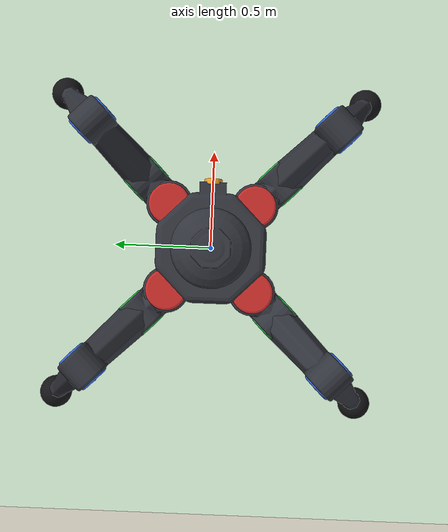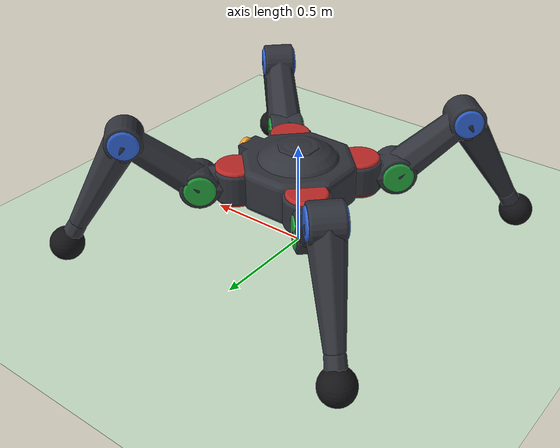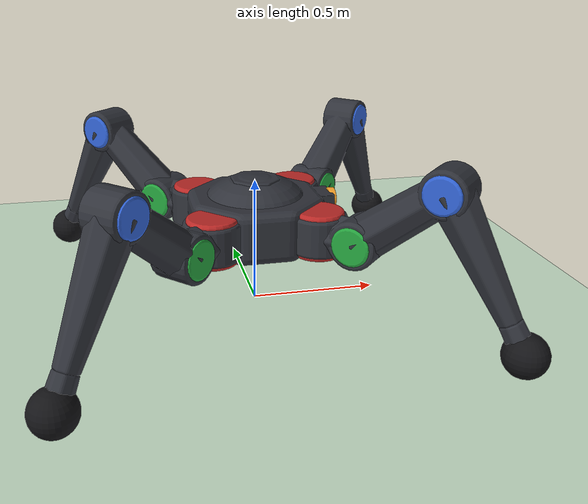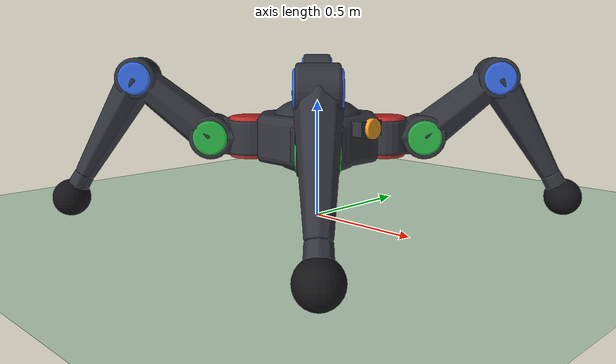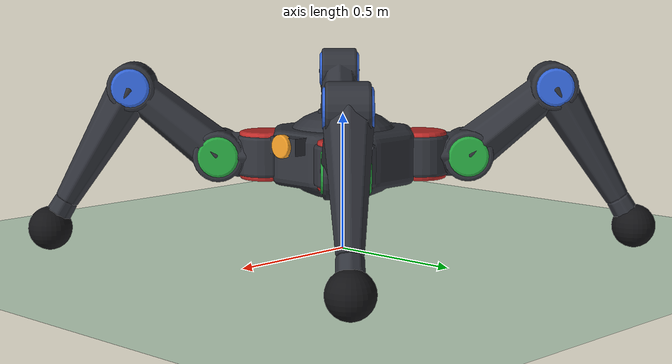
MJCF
<mujoco model="spyder12">
  <compiler angle="degree" coordinate="local" inertiafromgeom="true"/>
  <option integrator="RK4" timestep="0.01"/>

  <default>
    <joint armature="1" damping="1" stiffness="30" limited="true"/>
    <geom condim="3" density="5.0" friction="1 0.5 0.5" margin="0.01" rgba="0.55 0.55 0.58 1" group="3"/>
    <motor ctrllimited="true" ctrlrange="-1 1" gear="40"/>
    <default class="visual">
      <geom type="mesh" contype="0" conaffinity="0" density="0" group="2" rgba="0.5 0.5 0.5 1"/>
    </default>
  </default>

  <!-- Floor texture + skybox (same recipe as Gymnasium's ant.xml). Without a
       ground plane the spider free-falls forever — a robot model alone is not
       a world. -->
  <asset>
    <texture builtin="gradient" height="100" rgb1="1 1 1" rgb2="0 0 0" type="skybox" width="100"/>
    <texture builtin="checker" height="100" name="texplane" rgb1="0.28 0.30 0.32" rgb2="0.38 0.40 0.42" type="2d" width="100"/>
    <material name="MatPlane" reflectance="0.3" shininess="1" specular="1" texrepeat="60 60" texture="texplane"/>

    <mesh name="carapace_shell" file="meshes/carapace_shell.obj"/>
    <mesh name="carapace_lens"  file="meshes/carapace_lens.obj"/>
    <mesh name="coxa_shell"     file="meshes/coxa_shell.obj"/>
    <mesh name="coxa_hub"       file="meshes/coxa_hub.obj"/>
    <mesh name="femur_shell"    file="meshes/femur_shell.obj"/>
    <mesh name="femur_hub"      file="meshes/femur_hub.obj"/>
    <mesh name="tibia_shell"    file="meshes/tibia_shell.obj"/>
    <mesh name="tibia_hub"      file="meshes/tibia_hub.obj"/>
    <mesh name="tibia_pad"      file="meshes/tibia_pad.obj"/>

    <!-- MuJoCo's OBJ loader ignores .mtl, so colour lives here and each colour
         needs its own mesh — that is why every part splits shell/hub. -->
    <material name="MatShell" rgba="0.19 0.20 0.23 1" specular="0.6" shininess="0.55" reflectance="0.12"/>
    <material name="MatHip"   rgba="0.76 0.17 0.16 1" specular="0.5" shininess="0.40"/>
    <material name="MatLift"  rgba="0.15 0.65 0.25 1" specular="0.5" shininess="0.40"/>
    <material name="MatKnee"  rgba="0.20 0.40 0.85 1" specular="0.5" shininess="0.40"/>
    <material name="MatPad"   rgba="0.08 0.08 0.09 1" specular="0.1" shininess="0.10"/>
    <material name="MatLens"  rgba="0.95 0.62 0.15 1" specular="0.9" shininess="0.90" emission="0.35"/>
  </asset>

  <worldbody>
    <light cutoff="100" diffuse="1 1 1" dir="0 0 -1.3" directional="true" exponent="1" pos="0 0 1.3" specular=".1 .1 .1"/>
    <geom conaffinity="1" condim="3" group="0" material="MatPlane" name="floor" pos="0 0 0" rgba="0.8 0.9 0.8 1" size="40 40 40" type="plane"/>

    <body name="torso" pos="0 0 0.35">
      <camera name="track" mode="trackcom" pos="0 -3 0.3" xyaxes="1 0 0 0 0 1"/>
      <joint armature="0" damping="0" stiffness="0" limited="false" margin="0.01" name="root" pos="0 0 0" type="free"/>
      <geom class="visual" mesh="carapace_shell" material="MatShell"/>
      <geom class="visual" mesh="carapace_lens"  material="MatLens"/>

      <geom name="torso_geom" pos="0 0 0" size="0.25" type="sphere" rgba="0.28 0.28 0.32 1"/>
      <!-- Coxa stubs: welded to the torso (they carry no joint), one per leg. -->
      <geom name="stub_1" fromto="0 0 0  0.2  0.2 0" size="0.08" type="capsule"/>
      <geom name="stub_2" fromto="0 0 0 -0.2  0.2 0" size="0.08" type="capsule"/>
      <geom name="stub_3" fromto="0 0 0 -0.2 -0.2 0" size="0.08" type="capsule"/>
      <geom name="stub_4" fromto="0 0 0  0.2 -0.2 0" size="0.08" type="capsule"/>

      <!-- ═ Leg 1 · front-left (+x,+y) ═ -->
      <body name="coxa_1" pos="0.2 0.2 0">
        <joint name="hip_1" type="hinge" axis="0 0 1" pos="0 0 0" range="-40 40"/>
        <!-- Leg 1 runs along +45°, so each shell mesh — authored along +x — is
             instanced with quat = rot_z(45°) = (cos 22.5°, 0, 0, sin 22.5°). -->
        <geom class="visual" mesh="coxa_shell" material="MatShell" quat="0.92387953 0 0 0.38268343"/>
        <geom class="visual" mesh="coxa_hub"   material="MatHip"   quat="0.92387953 0 0 0.38268343"/>
        <geom name="coxa_1_geom" fromto="0 0 0 0.12 0.12 0" size="0.08" type="capsule"/>
        <body name="femur_1" pos="0.12 0.12 0">
          <joint name="lift_1" type="hinge" axis="-1 1 0" pos="0 0 0" range="-60 60"/>
          <geom class="visual" mesh="femur_shell" material="MatShell" quat="0.92387953 0 0 0.38268343"/>
          <geom class="visual" mesh="femur_hub"   material="MatLift"  quat="0.92387953 0 0 0.38268343"/>
          <geom name="femur_1_geom" fromto="0 0 0 0.22 0.22 0.25" size="0.08" type="capsule"/>
          <body name="tibia_1" pos="0.22 0.22 0.25">
            <joint name="knee_1" type="hinge" axis="-1 1 0" pos="0 0 0" range="-50 50"/>
            <geom class="visual" mesh="tibia_shell" material="MatShell" quat="0.92387953 0 0 0.38268343"/>
            <geom class="visual" mesh="tibia_hub"   material="MatKnee"  quat="0.92387953 0 0 0.38268343"/>
            <geom class="visual" mesh="tibia_pad"   material="MatPad"   quat="0.92387953 0 0 0.38268343"/>
            <geom name="tibia_1_geom" fromto="0 0 0 0.22 0.22 -0.52" size="0.08" type="capsule"/>
          </body>
        </body>
      </body>

      <!-- ═ Leg 2 · front-right (-x,+y) ═ -->
      <body name="coxa_2" pos="-0.2 0.2 0">
        <joint name="hip_2" type="hinge" axis="0 0 1" pos="0 0 0" range="-40 40"/>
        <!-- Leg 2: +135° -->
        <geom class="visual" mesh="coxa_shell" material="MatShell" quat="0.38268343 0 0 0.92387953"/>
        <geom class="visual" mesh="coxa_hub"   material="MatHip"   quat="0.38268343 0 0 0.92387953"/>
        <geom name="coxa_2_geom" fromto="0 0 0 -0.12 0.12 0" size="0.08" type="capsule"/>
        <body name="femur_2" pos="-0.12 0.12 0">
          <joint name="lift_2" type="hinge" axis="1 1 0" pos="0 0 0" range="-60 60"/>
          <geom class="visual" mesh="femur_shell" material="MatShell" quat="0.38268343 0 0 0.92387953"/>
          <geom class="visual" mesh="femur_hub"   material="MatLift"  quat="0.38268343 0 0 0.92387953"/>
          <geom name="femur_2_geom" fromto="0 0 0 -0.22 0.22 0.25" size="0.08" type="capsule"/>
          <body name="tibia_2" pos="-0.22 0.22 0.25">
            <joint name="knee_2" type="hinge" axis="1 1 0" pos="0 0 0" range="-50 50"/>
            <geom class="visual" mesh="tibia_shell" material="MatShell" quat="0.38268343 0 0 0.92387953"/>
            <geom class="visual" mesh="tibia_hub"   material="MatKnee"  quat="0.38268343 0 0 0.92387953"/>
            <geom class="visual" mesh="tibia_pad"   material="MatPad"   quat="0.38268343 0 0 0.92387953"/>
            <geom name="tibia_2_geom" fromto="0 0 0 -0.22 0.22 -0.52" size="0.08" type="capsule"/>
          </body>
        </body>
      </body>

      <!-- ═ Leg 3 · back-left (-x,-y) ═ -->
      <body name="coxa_3" pos="-0.2 -0.2 0">
        <joint name="hip_3" type="hinge" axis="0 0 1" pos="0 0 0" range="-40 40"/>
        <!-- Leg 3: -135° -->
        <geom class="visual" mesh="coxa_shell" material="MatShell" quat="0.38268343 0 0 -0.92387953"/>
        <geom class="visual" mesh="coxa_hub"   material="MatHip"   quat="0.38268343 0 0 -0.92387953"/>
        <geom name="coxa_3_geom" fromto="0 0 0 -0.12 -0.12 0" size="0.08" type="capsule"/>
        <body name="femur_3" pos="-0.12 -0.12 0">
          <joint name="lift_3" type="hinge" axis="-1 1 0" pos="0 0 0" range="-60 60"/>
          <geom class="visual" mesh="femur_shell" material="MatShell" quat="0.38268343 0 0 -0.92387953"/>
          <geom class="visual" mesh="femur_hub"   material="MatLift"  quat="0.38268343 0 0 -0.92387953"/>
          <geom name="femur_3_geom" fromto="0 0 0 -0.22 -0.22 0.25" size="0.08" type="capsule"/>
          <body name="tibia_3" pos="-0.22 -0.22 0.25">
            <joint name="knee_3" type="hinge" axis="-1 1 0" pos="0 0 0" range="-50 50"/>
            <geom class="visual" mesh="tibia_shell" material="MatShell" quat="0.38268343 0 0 -0.92387953"/>
            <geom class="visual" mesh="tibia_hub"   material="MatKnee"  quat="0.38268343 0 0 -0.92387953"/>
            <geom class="visual" mesh="tibia_pad"   material="MatPad"   quat="0.38268343 0 0 -0.92387953"/>
            <geom name="tibia_3_geom" fromto="0 0 0 -0.22 -0.22 -0.52" size="0.08" type="capsule"/>
          </body>
        </body>
      </body>

      <!-- ═ Leg 4 · back-right (+x,-y) ═ -->
      <body name="coxa_4" pos="0.2 -0.2 0">
        <joint name="hip_4" type="hinge" axis="0 0 1" pos="0 0 0" range="-40 40"/>
        <!-- Leg 4: -45° -->
        <geom class="visual" mesh="coxa_shell" material="MatShell" quat="0.92387953 0 0 -0.38268343"/>
        <geom class="visual" mesh="coxa_hub"   material="MatHip"   quat="0.92387953 0 0 -0.38268343"/>
        <geom name="coxa_4_geom" fromto="0 0 0 0.12 -0.12 0" size="0.08" type="capsule"/>
        <body name="femur_4" pos="0.12 -0.12 0">
          <joint name="lift_4" type="hinge" axis="1 1 0" pos="0 0 0" range="-60 60"/>
          <geom class="visual" mesh="femur_shell" material="MatShell" quat="0.92387953 0 0 -0.38268343"/>
          <geom class="visual" mesh="femur_hub"   material="MatLift"  quat="0.92387953 0 0 -0.38268343"/>
          <geom name="femur_4_geom" fromto="0 0 0 0.22 -0.22 0.25" size="0.08" type="capsule"/>
          <body name="tibia_4" pos="0.22 -0.22 0.25">
            <joint name="knee_4" type="hinge" axis="1 1 0" pos="0 0 0" range="-50 50"/>
            <geom class="visual" mesh="tibia_shell" material="MatShell" quat="0.92387953 0 0 -0.38268343"/>
            <geom class="visual" mesh="tibia_hub"   material="MatKnee"  quat="0.92387953 0 0 -0.38268343"/>
            <geom class="visual" mesh="tibia_pad"   material="MatPad"   quat="0.92387953 0 0 -0.38268343"/>
            <geom name="tibia_4_geom" fromto="0 0 0 0.22 -0.22 -0.52" size="0.08" type="capsule"/>
          </body>
        </body>
      </body>
    </body>
  </worldbody>

  <actuator>
    <!-- Clean per-leg order (leg 1..4: hip, lift, knee). Action index meaning is
         positional — this order is the Spyder-v0 action-space contract. -->
    <motor name="hip_1"  joint="hip_1"/>
    <motor name="lift_1" joint="lift_1"/>
    <motor name="knee_1" joint="knee_1"/>
    <motor name="hip_2"  joint="hip_2"/>
    <motor name="lift_2" joint="lift_2"/>
    <motor name="knee_2" joint="knee_2"/>
    <motor name="hip_3"  joint="hip_3"/>
    <motor name="lift_3" joint="lift_3"/>
    <motor name="knee_3" joint="knee_3"/>
    <motor name="hip_4"  joint="hip_4"/>
    <motor name="lift_4" joint="lift_4"/>
    <motor name="knee_4" joint="knee_4"/>
  </actuator>
</mujoco>
